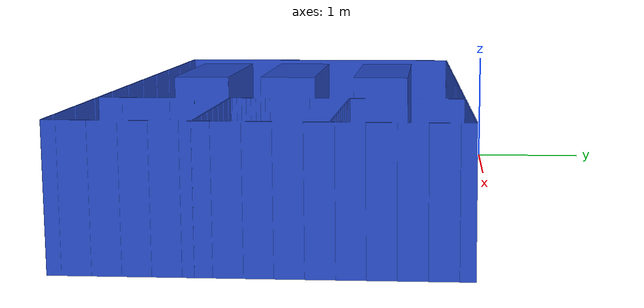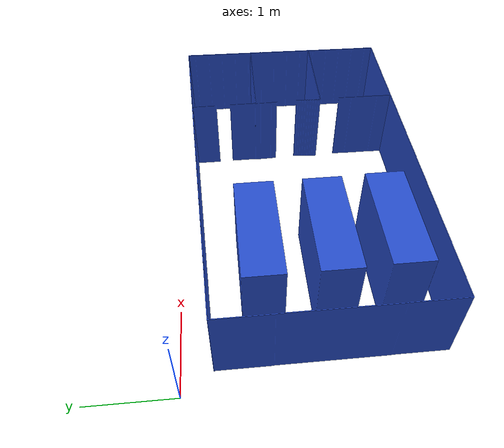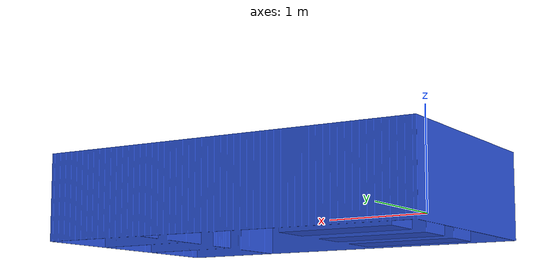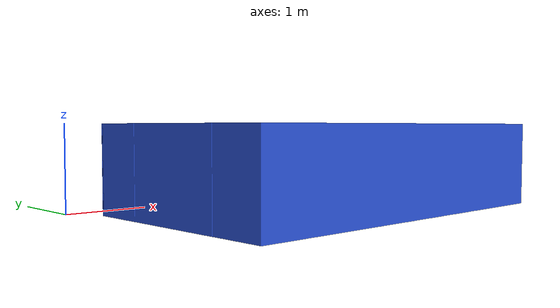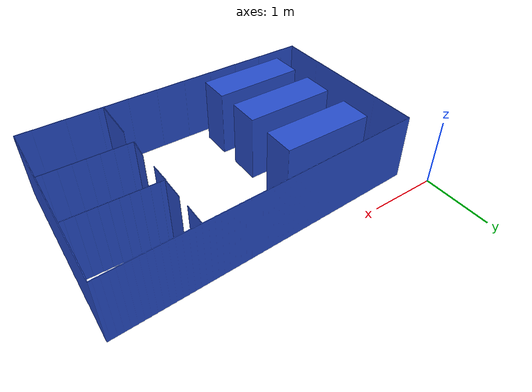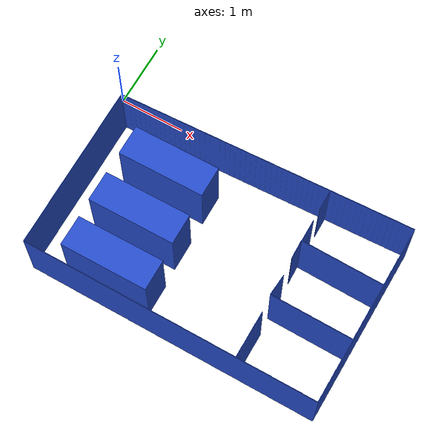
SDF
<sdf version='1.5'>
  <model name='walls'>
    <static>1</static>
    <link name='symbol'>

      <collision name='my_walls'>
        <pose>0 0 0 0 0 0</pose>
        <geometry>
          <mesh>
            <uri>model://nowhere/meshes/a_map.stl</uri>
            <scale>1 1 1</scale>
          </mesh>
        </geometry>
        <max_contacts>10</max_contacts>
        <surface>
          <bounce/>
          <friction>
            <ode/>
          </friction>
          <contact>
            <ode/>
          </contact>
        </surface>
      </collision>

      <visual name='my_walls'>
        <pose>0 0 0 0 0 0</pose>
        <geometry>
          <mesh>
            <uri>model://nowhere/meshes/a_map.stl</uri>
            <scale>1 1 1</scale>
          </mesh>
        </geometry>
        <material>
          <script>
            <uri>file://media/materials/scripts/gazebo.material</uri>
            <name>Gazebo/Blue</name>
          </script>
        </material>
      </visual>
    </link>
  </model>
</sdf>
